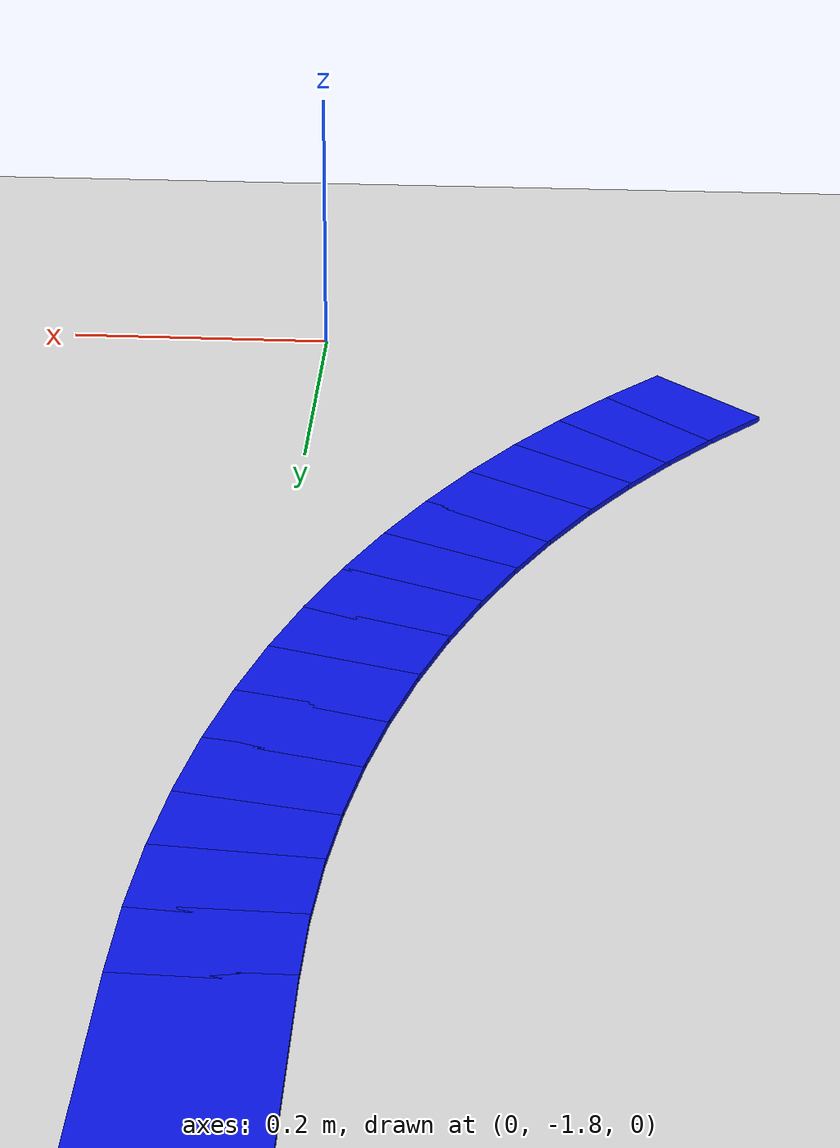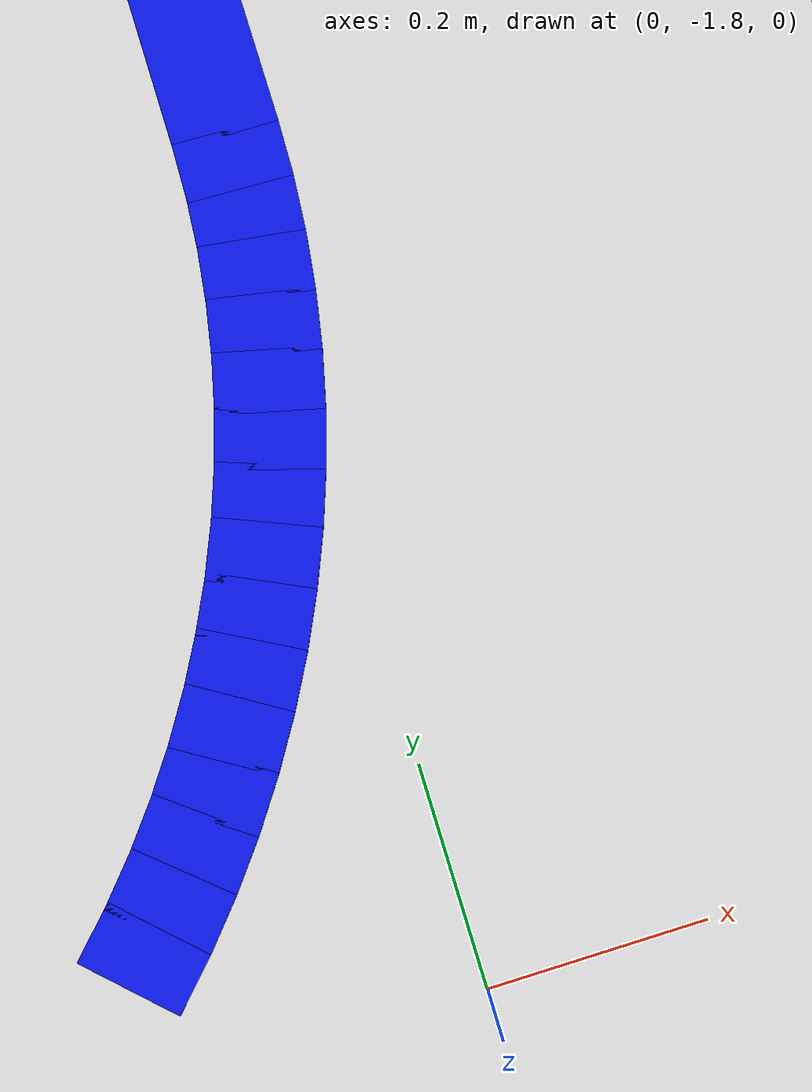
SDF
<sdf version="1.8">
 <world name="final_line">
  <model name="floor">
   <static>true</static>
   <pose>0.000000 0.000000 -0.050000 0 0 0.000000</pose>
   <link name="body">
    <collision name="collision"><geometry><box><size>12 12 0.1</size></box></geometry></collision>
    <visual name="visual">
     <geometry><box><size>12 12 0.1</size></box></geometry>
     <cast_shadows>false</cast_shadows>
     <material><ambient>0.85 0.85 0.85 1</ambient><diffuse>0.85 0.85 0.85 1</diffuse></material>
    </visual>
   </link>
  </model>
  <model name="line_016">
   <static>true</static>
   <pose>-0.274874 -1.688119 0.002000 0 0 0.811578</pose>
   <link name="body">
    <visual name="visual">
     <geometry><box><size>0.05735389661574629 0.1 0.004</size></box></geometry>
     <cast_shadows>false</cast_shadows>
     <material><ambient>0.03 0.08 0.9 1</ambient><diffuse>0.03 0.08 0.9 1</diffuse></material>
    </visual>
   </link>
  </model>
  <model name="line_017">
   <static>true</static>
   <pose>-0.239855 -1.649225 0.002000 0 0 0.863938</pose>
   <link name="body">
    <visual name="visual">
     <geometry><box><size>0.05735389661574646 0.1 0.004</size></box></geometry>
     <cast_shadows>false</cast_shadows>
     <material><ambient>0.03 0.08 0.9 1</ambient><diffuse>0.03 0.08 0.9 1</diffuse></material>
    </visual>
   </link>
  </model>
  <model name="line_018">
   <static>true</static>
   <pose>-0.206919 -1.608553 0.002000 0 0 0.916298</pose>
   <link name="body">
    <visual name="visual">
     <geometry><box><size>0.057353896615746164 0.1 0.004</size></box></geometry>
     <cast_shadows>false</cast_shadows>
     <material><ambient>0.03 0.08 0.9 1</ambient><diffuse>0.03 0.08 0.9 1</diffuse></material>
    </visual>
   </link>
  </model>
  <model name="line_019">
   <static>true</static>
   <pose>-0.176156 -1.566212 0.002000 0 0 0.968658</pose>
   <link name="body">
    <visual name="visual">
     <geometry><box><size>0.05735389661574639 0.1 0.004</size></box></geometry>
     <cast_shadows>false</cast_shadows>
     <material><ambient>0.03 0.08 0.9 1</ambient><diffuse>0.03 0.08 0.9 1</diffuse></material>
    </visual>
   </link>
  </model>
  <model name="line_020">
   <static>true</static>
   <pose>-0.147652 -1.522320 0.002000 0 0 1.021018</pose>
   <link name="body">
    <visual name="visual">
     <geometry><box><size>0.05735389661574617 0.1 0.004</size></box></geometry>
     <cast_shadows>false</cast_shadows>
     <material><ambient>0.03 0.08 0.9 1</ambient><diffuse>0.03 0.08 0.9 1</diffuse></material>
    </visual>
   </link>
  </model>
  <model name="line_021">
   <static>true</static>
   <pose>-0.121484 -1.476995 0.002000 0 0 1.073377</pose>
   <link name="body">
    <visual name="visual">
     <geometry><box><size>0.05735389661574638 0.1 0.004</size></box></geometry>
     <cast_shadows>false</cast_shadows>
     <material><ambient>0.03 0.08 0.9 1</ambient><diffuse>0.03 0.08 0.9 1</diffuse></material>
    </visual>
   </link>
  </model>
  <model name="line_022">
   <static>true</static>
   <pose>-0.097724 -1.430364 0.002000 0 0 1.125737</pose>
   <link name="body">
    <visual name="visual">
     <geometry><box><size>0.05735389661574609 0.1 0.004</size></box></geometry>
     <cast_shadows>false</cast_shadows>
     <material><ambient>0.03 0.08 0.9 1</ambient><diffuse>0.03 0.08 0.9 1</diffuse></material>
    </visual>
   </link>
  </model>
  <model name="line_023">
   <static>true</static>
   <pose>-0.076437 -1.382552 0.002000 0 0 1.178097</pose>
   <link name="body">
    <visual name="visual">
     <geometry><box><size>0.05735389661574647 0.1 0.004</size></box></geometry>
     <cast_shadows>false</cast_shadows>
     <material><ambient>0.03 0.08 0.9 1</ambient><diffuse>0.03 0.08 0.9 1</diffuse></material>
    </visual>
   </link>
  </model>
  <model name="line_024">
   <static>true</static>
   <pose>-0.057682 -1.333692 0.002000 0 0 1.230457</pose>
   <link name="body">
    <visual name="visual">
     <geometry><box><size>0.05735389661574626 0.1 0.004</size></box></geometry>
     <cast_shadows>false</cast_shadows>
     <material><ambient>0.03 0.08 0.9 1</ambient><diffuse>0.03 0.08 0.9 1</diffuse></material>
    </visual>
   </link>
  </model>
  <model name="line_025">
   <static>true</static>
   <pose>-0.041509 -1.283918 0.002000 0 0 1.282817</pose>
   <link name="body">
    <visual name="visual">
     <geometry><box><size>0.05735389661574637 0.1 0.004</size></box></geometry>
     <cast_shadows>false</cast_shadows>
     <material><ambient>0.03 0.08 0.9 1</ambient><diffuse>0.03 0.08 0.9 1</diffuse></material>
    </visual>
   </link>
  </model>
  <model name="line_026">
   <static>true</static>
   <pose>-0.027963 -1.233365 0.002000 0 0 1.335177</pose>
   <link name="body">
    <visual name="visual">
     <geometry><box><size>0.05735389661574644 0.1 0.004</size></box></geometry>
     <cast_shadows>false</cast_shadows>
     <material><ambient>0.03 0.08 0.9 1</ambient><diffuse>0.03 0.08 0.9 1</diffuse></material>
    </visual>
   </link>
  </model>
  <model name="line_027">
   <static>true</static>
   <pose>-0.017082 -1.182173 0.002000 0 0 1.387537</pose>
   <link name="body">
    <visual name="visual">
     <geometry><box><size>0.05735389661574606 0.1 0.004</size></box></geometry>
     <cast_shadows>false</cast_shadows>
     <material><ambient>0.03 0.08 0.9 1</ambient><diffuse>0.03 0.08 0.9 1</diffuse></material>
    </visual>
   </link>
  </model>
  <model name="line_028">
   <static>true</static>
   <pose>-0.008895 -1.130481 0.002000 0 0 1.439897</pose>
   <link name="body">
    <visual name="visual">
     <geometry><box><size>0.05735389661574654 0.1 0.004</size></box></geometry>
     <cast_shadows>false</cast_shadows>
     <material><ambient>0.03 0.08 0.9 1</ambient><diffuse>0.03 0.08 0.9 1</diffuse></material>
    </visual>
   </link>
  </model>
  <model name="line_029">
   <static>true</static>
   <pose>-0.003424 -1.078432 0.002000 0 0 1.492257</pose>
   <link name="body">
    <visual name="visual">
     <geometry><box><size>0.05735389661574623 0.1 0.004</size></box></geometry>
     <cast_shadows>false</cast_shadows>
     <material><ambient>0.03 0.08 0.9 1</ambient><diffuse>0.03 0.08 0.9 1</diffuse></material>
    </visual>
   </link>
  </model>
  <model name="line_030">
   <static>true</static>
   <pose>-0.000685 -1.026168 0.002000 0 0 1.544616</pose>
   <link name="body">
    <visual name="visual">
     <geometry><box><size>0.05735389661574598 0.1 0.004</size></box></geometry>
     <cast_shadows>false</cast_shadows>
     <material><ambient>0.03 0.08 0.9 1</ambient><diffuse>0.03 0.08 0.9 1</diffuse></material>
    </visual>
   </link>
  </model>
  <model name="line_031">
   <static>true</static>
   <pose>0.000000 -0.000000 0.002000 0 0 1.570796</pose>
   <link name="body">
    <visual name="visual">
     <geometry><box><size>2.005 0.1 0.004</size></box></geometry>
     <cast_shadows>false</cast_shadows>
     <material><ambient>0.03 0.08 0.9 1</ambient><diffuse>0.03 0.08 0.9 1</diffuse></material>
    </visual>
   </link>
  </model>
 </world>
</sdf>
